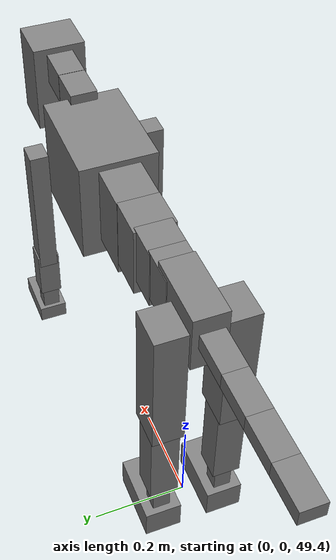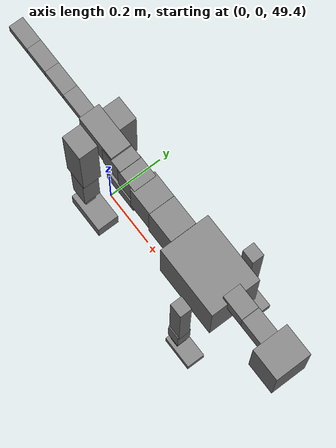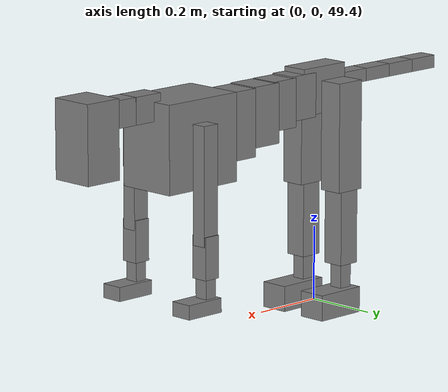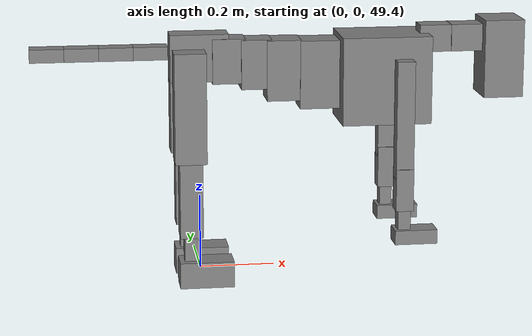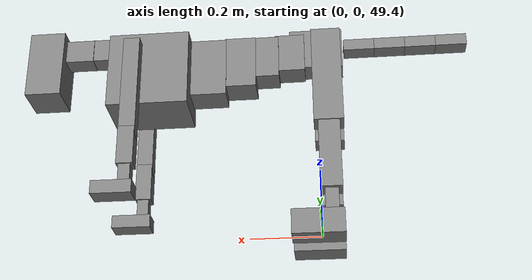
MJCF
<mujoco model="dog">

    <default>
        <joint armature="0.02" stiffness="1" damping="0.2" limited="true"/>
        <geom condim="3" friction="1 0.05 0.05" margin="0.01"/>
        <motor ctrllimited="true" ctrlrange="-1.0 1.0" forcelimited="true" gear="50"/>
    </default>

    <compiler inertiafromgeom="true" angle="radian"/>

    <option timestep="0.016" iterations="50" tolerance="1e-10" solver="Newton" jacobian="dense" cone="pyramidal"/>

    <size nconmax="20000" njmax="60000" nstack="5000000"/>
    <visual>
        <map force="0.1" zfar="30"/>
        <rgba haze="0.15 0.25 0.35 1"/>
        <quality shadowsize="2048"/>
        <global offwidth="800" offheight="800"/>
    </visual>

    <asset>
        <texture type="skybox" builtin="gradient" rgb1="0.3 0.5 0.7" rgb2="0 0 0" width="512" height="512"/>
        <texture name="texplane" type="2d" builtin="checker" rgb1=".2 .3 .4" rgb2=".1 0.15 0.2" width="512" height="512"
                 mark="cross" markrgb=".8 .8 .8"/>
        <texture name="texgeom" type="cube" builtin="flat" mark="cross" width="127" height="1278" rgb1="0.8 0.6 0.4"
                 rgb2="0.8 0.6 0.4" markrgb="1 1 1" random="0.01"/>

        <material name="matplane" reflectance="0.3" texture="texplane" texrepeat="1 1" texuniform="true"/>
        <material name="matgeom" texture="texgeom" texuniform="true" rgba="0.8 0.6 .4 1"/>
    </asset>

    <worldbody>
        <geom name="floor" pos="0 0 0" size="0 0 .25" type="plane" material="matplane" condim="3"/>

        <light directional="false" diffuse=".2 .2 .2" specular="0 0 0" pos="0 0 5" dir="0 0 -1" castshadow="false"/>
        <light mode="targetbodycom" target="torso" directional="false" diffuse=".8 .8 .8" specular="0.3 0.3 0.3"
               pos="0 0 4.0" dir="0 0 -1"/>

        <body name="root" pos="0 0 50">
            <freejoint name="root_1"/>
            <geom type="box" pos="0 0 -0.02" size="0.0774  0.0358  0.063" density="2030"/>

            <body name="spine1" pos="0.054 0 0">
                <joint name="spine1_y" axis="0 1 0" range="0 0.7" limited="true"/>
                <geom type="box" pos="0.02375 0 -0.03" size="0.04375  0.0375  0.05985" density="2030"/>

                <body name="spine2" pos="0.0612 0 0">
                    <joint name="spine2_y" axis="0 1 0" range="-0.15 0.15" limited="true"/>
                    <geom type="box" pos="0.03555  0  -0.04" size="0.04055  0.039  0.06615" density="2030"/>

                    <body name="spine3" pos="0.0730 0 0">
                        <joint name="spine3_y" axis="0 1 0" range="-0.15 0.15" limited="true"/>
                        <geom type="box" pos="0.03555  0  -0.057" size="0.04555  0.0445  0.081" density="2030"/>

                        <body name="spine4" pos="0.0780 0 0">
                            <joint name="spine4_y" axis="0 1 0" range="-0.15 0.15" limited="true"/>
                            <geom type="box" pos="0.05265  0  -0.07" size="0.05265  0.045  0.09135" density="2030"/>

                            <body name="torso" pos="0.1082 0 0">
                                <joint name="torso_y" axis="0 1 0" range="-0.15 0.15" limited="true"/>
                                <geom type="box" pos="0.11925  0  -0.085" size="0.11925  0.085  0.11745"
                                      density="2030"/>

                                <body name="neck1" pos="0.2160  0   0.0180">
                                    <joint name="neck1_y" axis="0 1 0" range="-1.2  -1" limited="true"/>
                                    <geom type="box" pos="0.0423  0  0" size="0.0423  0.03  0.036" density="2325"/>

                                    <body name="neck2" pos="0.0853  0  0">
                                        <joint name="neck2_y" axis="0 1 0" range="0.1  0" limited="true"/>
                                        <geom type="box" pos="0.0423  0  0" size="0.0423  0.03  0.036" density="2325"/>

                                        <body name="head" pos="0.0853  0  0">
                                            <joint name="head_y" axis="0 1 0" range="-0.3  -0.2" limited="true"/>
                                            <geom type="box" pos="0.0531  0  -0.055" size="0.0531  0.06  0.1044"
                                                  density="4030"/>

                                        </body>
                                    </body>
                                </body>

                                <body name="front_shoulder" pos="0.156  0   -0.0480">
                                    <joint name="front_shoulder_y" axis="0 1 0" range="-1 1.5" limited="true"/>
                                    <geom type="box" pos="0 0.13 -0.1307" size="0.0236  0.0202  0.1574" density="1158"/>
                                    <geom type="box" pos="0 -0.13 -0.1307" size="0.0236  0.0202  0.1574"
                                          density="1158"/>

                                    <body name="front_elbow" pos="0  0  -0.2615">
                                        <joint name="front_elbow_y" axis="0 1 0" range="-2 0" limited="true"/>
                                        <geom type="box" pos="0 0.13 -0.0565" size="0.0233  0.0238  0.0565"
                                              density="1081"/>
                                        <geom type="box" pos="0 -0.13 -0.0565" size="0.0233  0.0238  0.0565"
                                              density="1081"/>

                                        <body name="front_wrist" pos="0  0  -0.1130">
                                            <joint name="front_wrist_y" axis="0 1 0" range="-0.2 0" limited="true"/>
                                            <geom type="box" pos="0 0.13 -0.0333" size="0.0168  0.0186  0.0464"
                                                  density="1664"/>
                                            <geom type="box" pos="0 -0.13 -0.0333" size="0.0168  0.0186  0.0464"
                                                  density="1664"/>

                                            <body name="front_finger_end" pos="0  0  -0.0666">
                                                <joint name="front_finger_y" axis="0 1 0" range="-0.4 1"
                                                       limited="true"/>
                                                <geom type="box" pos="0.0309  0.13  -0.0040"
                                                      size="0.0567  0.0309  0.0190" density="1515"/>
                                                <geom type="box" pos="0.0309  -0.13  -0.0040"
                                                      size="0.0567  0.0309  0.0190" density="1515"/>

                                            </body>

                                        </body>
                                    </body>
                                </body>

                            </body>
                        </body>
                    </body>
                </body>
            </body>

            <body name="back_hip" pos="-0.03 0 -0.018">
                <joint name="back_hip_y" axis="0 1 0" range="-1.5 0.3" limited="true"/>
                <geom type="box" pos="0 0.07 -0.1248" size="0.0421  0.0330  0.1476" density="1154"/>
                <geom type="box" pos="0 -0.07 -0.1248" size="0.0421  0.0330  0.1476" density="1154"/>

                <body name="back_knee" pos="0  0  -0.2496">
                    <joint name="back_knee_y" axis="0 1 0" range="0 2.8" limited="true"/>
                    <geom type="box" pos="0 0.07 -0.1041" size="0.0304  0.0299  0.1196" density="1227"/>
                    <geom type="box" pos="0 -0.07 -0.1041" size="0.0304  0.0299  0.1196" density="1227"/>

                    <body name="back_ankle" pos="0  0  -0.2082">
                        <joint name="back_ankle_y" axis="0 1 0" range="-2.2 0" limited="true"/>
                        <geom type="box" pos="0 0.07 -0.0480" size="0.0186  0.0186  0.0593" density="1284"/>
                        <geom type="box" pos="0 -0.07 -0.0480" size="0.0186  0.0186  0.0593" density="1284"/>

                        <body name="back_toe_end" pos="0  0  -0.0961">
                            <joint name="back_toe_y" axis="0 1 0" range="-0.4 1" limited="true"/>
                            <geom type="box" pos="0.0392  0.07  -0.0199" size="0.0719  0.0392  0.0349" density="1515"/>
                            <geom type="box" pos="0.0392  -0.07  -0.0199" size="0.0719  0.0392  0.0349" density="1515"/>

                        </body>
                    </body>
                </body>
            </body>

            <body name="tail1" pos="-0.074 0 -0.006">
                <joint name="tail1_y" axis="0 1 0" range="-0.2 0.2" limited="true"/>
                <geom type="box" pos="-0.0536  0  0" size="0.045  0.025  0.0175" density="1587"/>

                <body name="tail2" pos="-0.09 0 0">
                    <joint name="tail2_y" axis="0 1 0" range="-0.2 0.2" limited="true"/>
                    <geom type="box" pos="-0.0536  0  0" size="0.045  0.025  0.0175" density="1587"/>

                    <body name="tail3" pos="-0.09 0 0">
                        <joint name="tail3_y" axis="0 1 0" range="-0.2 0.2" limited="true"/>
                        <geom type="box" pos="-0.0536  0  0" size="0.045  0.025  0.0175" density="1587"/>

                        <body name="tail4" pos="-0.09 0 0">
                            <joint name="tail4_y" axis="0 1 0" range="-0.2 0.2" limited="true"/>
                            <geom type="box" pos="-0.0536  0  0" size="0.045  0.025  0.0175" density="1587"/>

                        </body>
                    </body>
                </body>
            </body>
        </body>
    </worldbody>

    <actuator>
        <motor joint="spine1_y" forcerange="-150 150     "/>
        <motor joint="spine2_y" forcerange="-150 150     "/>
        <motor joint="spine3_y" forcerange="-150 150     "/>
        <motor joint="spine4_y" forcerange="-150 150     "/>
        <motor joint="torso_y" forcerange="-150 150     "/>
        <motor joint="neck1_y" forcerange="-100 100       "/>
        <motor joint="neck2_y" forcerange="-100 100       "/>
        <motor joint="head_y" forcerange="-150 150       "/>
        <motor joint="front_shoulder_y" forcerange="-119.77 114.73"/>
        <motor joint="front_elbow_y" forcerange="-150.49 122.39"/>
        <motor joint="front_wrist_y" forcerange="-89.78 59.34"/>
        <motor joint="front_finger_y" forcerange="-77.87 47.09"/>
        <motor joint="back_hip_y" forcerange="-259.98 380.66"/>
        <motor joint="back_knee_y" forcerange="-245.59 389.82"/>
        <motor joint="back_angle_y" forcerange="-74.78 123.17"/>
        <motor joint="back_toe_y" forcerange="-126.32 107.33"/>
        <motor joint="tail1_y" forcerange="-50 50     "/>
        <motor joint="tail2_y" forcerange="-50 50     "/>
        <motor joint="tail3_y" forcerange="-50 50     "/>
        <motor joint="tail4_y" forcerange="-50 50     "/>
    </actuator>
</mujoco>
